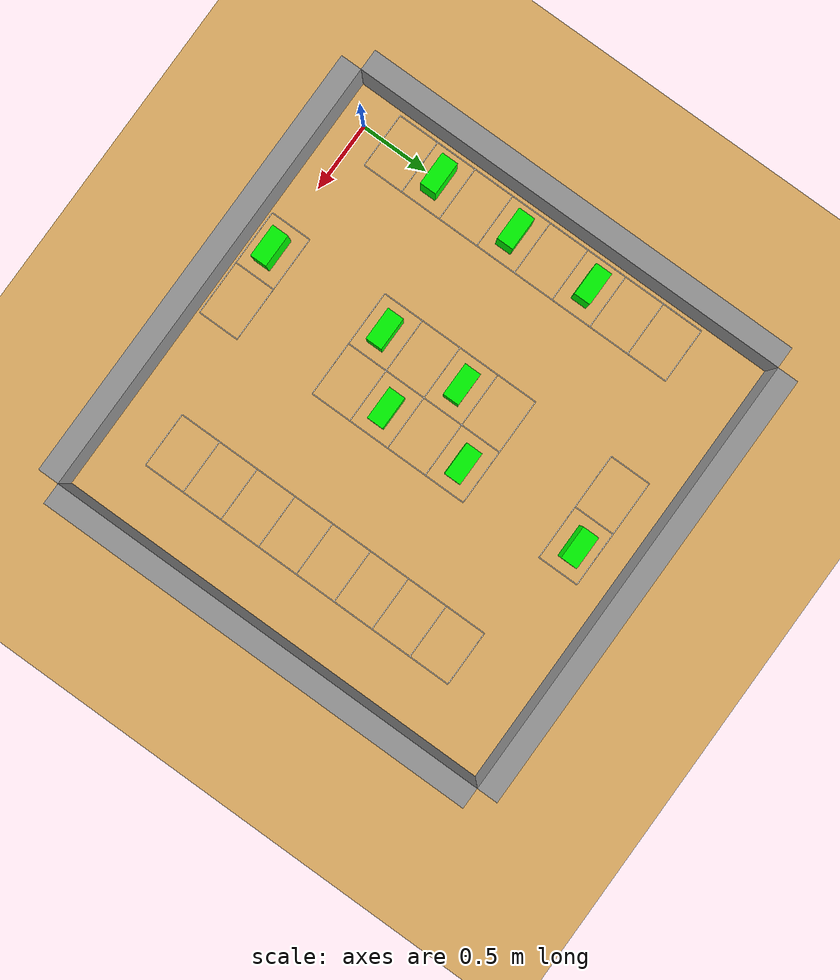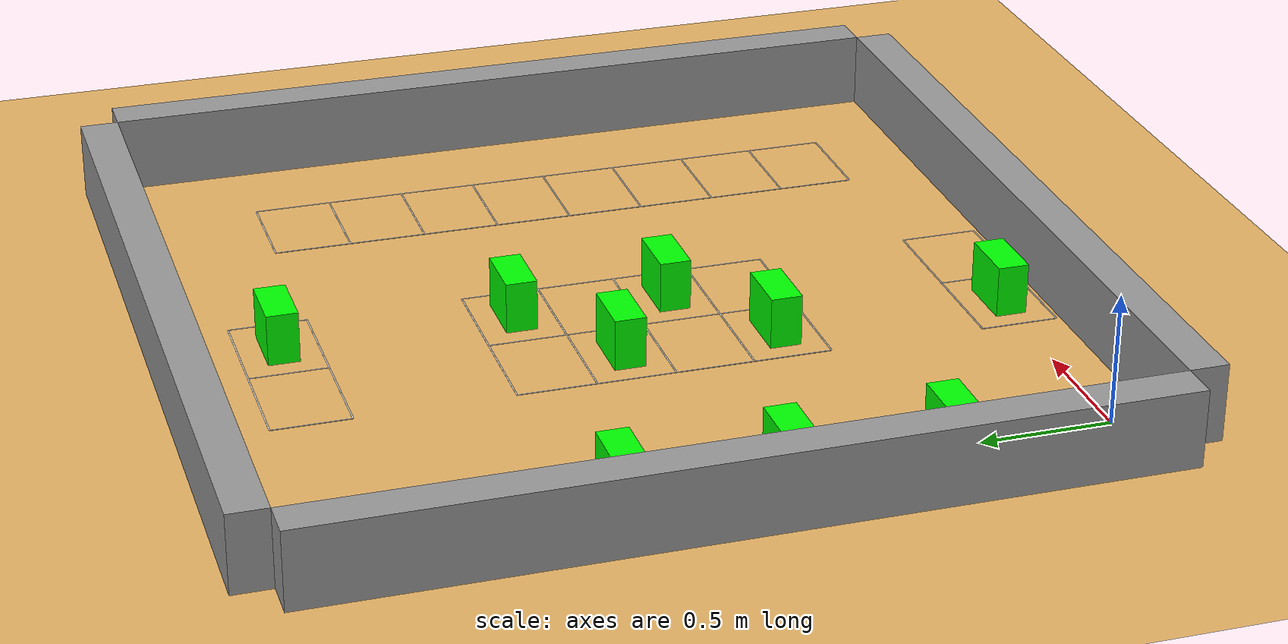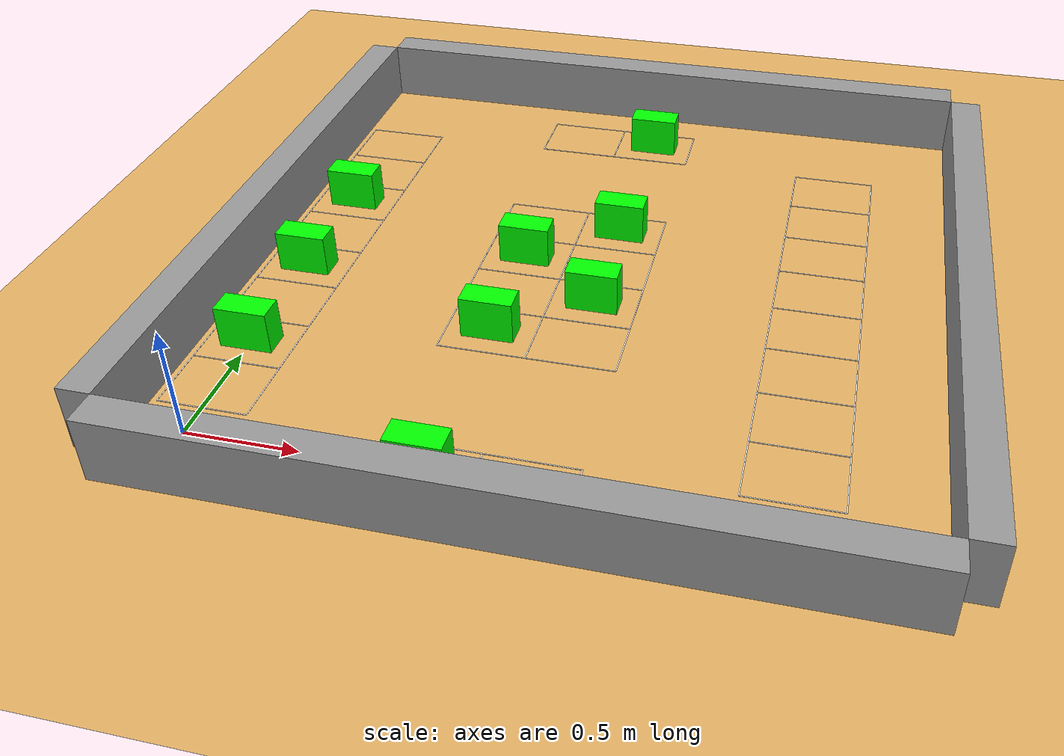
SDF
<sdf version="1.7">
 <world name="parking_lot">
  <light name="sun" type="directional">
   <pose>0 0 10 0 -0 0</pose>
   <diffuse>0.8 0.8 0.8 1</diffuse>
   <specular>0.2 0.2 0.2 1</specular>
   <attenuation>
    <range>1000</range>
    <constant>0.9</constant>
    <linear>0.01</linear>
    <quadratic>0.001</quadratic>
   </attenuation>
   <direction>-0.5 0.1 -0.9</direction>
   <spot><inner_angle>0</inner_angle><outer_angle>0</outer_angle><falloff>0</falloff></spot>
  </light>
  <model name="wood_ground_plane">
   <static>1</static>
   <link name="ground_link">
    <visual name="ground_visual">
     <geometry><plane><normal>0 0 1</normal><size>20 20</size></plane></geometry>
     <material><ambient>0.9 0.7 0.4 1</ambient><diffuse>0.9 0.7 0.4 1</diffuse></material>
    </visual>
    <collision name="collision">
     <geometry><plane><normal>0 0 1</normal><size>20 20</size></plane></geometry>
    </collision>
   </link>
  </model>
  <model name="parking_wall_3.5m">
   <pose>1.37274 2.16523 0 0 -0 0</pose>
   <link name="Wall_2">
    <collision name="Wall_2_Collision">
     <geometry><box><size>3.2 0.15 0.3</size></box></geometry>
     <pose>0 0 0.15 0 -0 0</pose>
    </collision>
    <visual name="Wall_2_Visual">
     <pose>0 0 0.15 0 -0 0</pose>
     <geometry><box><size>3.2 0.15 0.3</size></box></geometry>
     <material>
      <script><uri>file://media/materials/scripts/gazebo.material</uri><name>Gazebo/Grey</name></script>
      <ambient>1 1 1 1</ambient>
     </material>
     <meta><layer>0</layer></meta>
    </visual>
    <pose>0 0.942857 0 0 -0 3.14159</pose>
   </link>
   <link name="Wall_3">
    <collision name="Wall_3_Collision">
     <geometry><box><size>3.2 0.15 0.3</size></box></geometry>
     <pose>0 0 0.15 0 -0 0</pose>
    </collision>
    <visual name="Wall_3_Visual">
     <pose>0 0 0.15 0 -0 0</pose>
     <geometry><box><size>3.2 0.15 0.3</size></box></geometry>
     <material>
      <script><uri>file://media/materials/scripts/gazebo.material</uri><name>Gazebo/Grey</name></script>
      <ambient>1 1 1 1</ambient>
     </material>
     <meta><layer>0</layer></meta>
    </visual>
    <pose>-1.675 -0.732143 0 0 -0 -1.5708</pose>
   </link>
   <link name="Wall_4">
    <collision name="Wall_4_Collision">
     <geometry><box><size>3.2 0.15 0.3</size></box></geometry>
     <pose>0 0 0.15 0 -0 0</pose>
    </collision>
    <visual name="Wall_4_Visual">
     <pose>0 0 0.15 0 -0 0</pose>
     <geometry><box><size>3.2 0.15 0.3</size></box></geometry>
     <material>
      <script><uri>file://media/materials/scripts/gazebo.material</uri><name>Gazebo/Grey</name></script>
      <ambient>1 1 1 1</ambient>
     </material>
     <meta><layer>0</layer></meta>
    </visual>
    <pose>0 -2.40714 0 0 -0 0</pose>
   </link>
   <link name="Wall_5">
    <collision name="Wall_5_Collision">
     <geometry><box><size>3.2 0.15 0.3</size></box></geometry>
     <pose>0 0 0.15 0 -0 0</pose>
    </collision>
    <visual name="Wall_5_Visual">
     <pose>0 0 0.15 0 -0 0</pose>
     <geometry><box><size>3.2 0.15 0.3</size></box></geometry>
     <material>
      <script><uri>file://media/materials/scripts/gazebo.material</uri><name>Gazebo/Grey</name></script>
      <ambient>1 1 1 1</ambient>
     </material>
     <meta><layer>0</layer></meta>
    </visual>
    <pose>1.675 -0.732143 0 0 -0 1.5708</pose>
   </link>
   <static>1</static>
  </model>
  <model name="parking_spot_1">
   <static>1</static>
   <pose>0 0.3 0 0 -0 0</pose>
   <link name="spot_link">
    <visual name="base_plate">
     <geometry><box><size>0.4 0.3 0.001</size></box></geometry>
     <material><ambient>0.9 0.7 0.4 1</ambient><diffuse>0.9 0.7 0.4 1</diffuse></material>
    </visual>
    <visual name="top_border">
     <pose>0 0.15 0.002 0 -0 0</pose>
     <geometry><box><size>0.4 0.005 0.001</size></box></geometry>
     <material><ambient>1 1 1 1</ambient><diffuse>1 1 1 1</diffuse></material>
    </visual>
    <visual name="bottom_border">
     <pose>0 -0.15 0.002 0 -0 0</pose>
     <geometry><box><size>0.4 0.005 0.001</size></box></geometry>
     <material><ambient>1 1 1 1</ambient><diffuse>1 1 1 1</diffuse></material>
    </visual>
    <visual name="left_border">
     <pose>-0.2 0 0.002 0 -0 0</pose>
     <geometry><box><size>0.005 0.3 0.001</size></box></geometry>
     <material><ambient>1 1 1 1</ambient><diffuse>1 1 1 1</diffuse></material>
    </visual>
    <visual name="right_border">
     <pose>0.2 0 0.002 0 -0 0</pose>
     <geometry><box><size>0.005 0.3 0.001</size></box></geometry>
     <material><ambient>1 1 1 1</ambient><diffuse>1 1 1 1</diffuse></material>
    </visual>
   </link>
  </model>
  <model name="parking_spot_2">
   <static>1</static>
   <pose>0 0.6 0 0 -0 0</pose>
   <link name="spot_link">
    <visual name="base_plate">
     <geometry><box><size>0.4 0.3 0.001</size></box></geometry>
     <material><ambient>0.9 0.7 0.4 1</ambient><diffuse>0.9 0.7 0.4 1</diffuse></material>
    </visual>
    <visual name="top_border">
     <pose>0 0.15 0.002 0 -0 0</pose>
     <geometry><box><size>0.4 0.005 0.001</size></box></geometry>
     <material><ambient>1 1 1 1</ambient><diffuse>1 1 1 1</diffuse></material>
    </visual>
    <visual name="bottom_border">
     <pose>0 -0.15 0.002 0 -0 0</pose>
     <geometry><box><size>0.4 0.005 0.001</size></box></geometry>
     <material><ambient>1 1 1 1</ambient><diffuse>1 1 1 1</diffuse></material>
    </visual>
    <visual name="left_border">
     <pose>-0.2 0 0.002 0 -0 0</pose>
     <geometry><box><size>0.005 0.3 0.001</size></box></geometry>
     <material><ambient>1 1 1 1</ambient><diffuse>1 1 1 1</diffuse></material>
    </visual>
    <visual name="right_border">
     <pose>0.2 0 0.002 0 -0 0</pose>
     <geometry><box><size>0.005 0.3 0.001</size></box></geometry>
     <material><ambient>1 1 1 1</ambient><diffuse>1 1 1 1</diffuse></material>
    </visual>
   </link>
  </model>
  <model name="parking_spot_3">
   <static>1</static>
   <pose>0 0.9 0 0 -0 0</pose>
   <link name="spot_link">
    <visual name="base_plate">
     <geometry><box><size>0.4 0.3 0.001</size></box></geometry>
     <material><ambient>0.9 0.7 0.4 1</ambient><diffuse>0.9 0.7 0.4 1</diffuse></material>
    </visual>
    <visual name="top_border">
     <pose>0 0.15 0.002 0 -0 0</pose>
     <geometry><box><size>0.4 0.005 0.001</size></box></geometry>
     <material><ambient>1 1 1 1</ambient><diffuse>1 1 1 1</diffuse></material>
    </visual>
    <visual name="bottom_border">
     <pose>0 -0.15 0.002 0 -0 0</pose>
     <geometry><box><size>0.4 0.005 0.001</size></box></geometry>
     <material><ambient>1 1 1 1</ambient><diffuse>1 1 1 1</diffuse></material>
    </visual>
    <visual name="left_border">
     <pose>-0.2 0 0.002 0 -0 0</pose>
     <geometry><box><size>0.005 0.3 0.001</size></box></geometry>
     <material><ambient>1 1 1 1</ambient><diffuse>1 1 1 1</diffuse></material>
    </visual>
    <visual name="right_border">
     <pose>0.2 0 0.002 0 -0 0</pose>
     <geometry><box><size>0.005 0.3 0.001</size></box></geometry>
     <material><ambient>1 1 1 1</ambient><diffuse>1 1 1 1</diffuse></material>
    </visual>
   </link>
  </model>
  <model name="parking_spot_4">
   <static>1</static>
   <pose>0 1.2 0 0 -0 0</pose>
   <link name="spot_link">
    <visual name="base_plate">
     <geometry><box><size>0.4 0.3 0.001</size></box></geometry>
     <material><ambient>0.9 0.7 0.4 1</ambient><diffuse>0.9 0.7 0.4 1</diffuse></material>
    </visual>
    <visual name="top_border">
     <pose>0 0.15 0.002 0 -0 0</pose>
     <geometry><box><size>0.4 0.005 0.001</size></box></geometry>
     <material><ambient>1 1 1 1</ambient><diffuse>1 1 1 1</diffuse></material>
    </visual>
    <visual name="bottom_border">
     <pose>0 -0.15 0.002 0 -0 0</pose>
     <geometry><box><size>0.4 0.005 0.001</size></box></geometry>
     <material><ambient>1 1 1 1</ambient><diffuse>1 1 1 1</diffuse></material>
    </visual>
    <visual name="left_border">
     <pose>-0.2 0 0.002 0 -0 0</pose>
     <geometry><box><size>0.005 0.3 0.001</size></box></geometry>
     <material><ambient>1 1 1 1</ambient><diffuse>1 1 1 1</diffuse></material>
    </visual>
    <visual name="right_border">
     <pose>0.2 0 0.002 0 -0 0</pose>
     <geometry><box><size>0.005 0.3 0.001</size></box></geometry>
     <material><ambient>1 1 1 1</ambient><diffuse>1 1 1 1</diffuse></material>
    </visual>
   </link>
  </model>
  <model name="parking_spot_5">
   <static>1</static>
   <pose>0 1.5 0 0 -0 0</pose>
   <link name="spot_link">
    <visual name="base_plate">
     <geometry><box><size>0.4 0.3 0.001</size></box></geometry>
     <material><ambient>0.9 0.7 0.4 1</ambient><diffuse>0.9 0.7 0.4 1</diffuse></material>
    </visual>
    <visual name="top_border">
     <pose>0 0.15 0.002 0 -0 0</pose>
     <geometry><box><size>0.4 0.005 0.001</size></box></geometry>
     <material><ambient>1 1 1 1</ambient><diffuse>1 1 1 1</diffuse></material>
    </visual>
    <visual name="bottom_border">
     <pose>0 -0.15 0.002 0 -0 0</pose>
     <geometry><box><size>0.4 0.005 0.001</size></box></geometry>
     <material><ambient>1 1 1 1</ambient><diffuse>1 1 1 1</diffuse></material>
    </visual>
    <visual name="left_border">
     <pose>-0.2 0 0.002 0 -0 0</pose>
     <geometry><box><size>0.005 0.3 0.001</size></box></geometry>
     <material><ambient>1 1 1 1</ambient><diffuse>1 1 1 1</diffuse></material>
    </visual>
    <visual name="right_border">
     <pose>0.2 0 0.002 0 -0 0</pose>
     <geometry><box><size>0.005 0.3 0.001</size></box></geometry>
     <material><ambient>1 1 1 1</ambient><diffuse>1 1 1 1</diffuse></material>
    </visual>
   </link>
  </model>
  <model name="parking_spot_6">
   <static>1</static>
   <pose>0 1.8 0 0 -0 0</pose>
   <link name="spot_link">
    <visual name="base_plate">
     <geometry><box><size>0.4 0.3 0.001</size></box></geometry>
     <material><ambient>0.9 0.7 0.4 1</ambient><diffuse>0.9 0.7 0.4 1</diffuse></material>
    </visual>
    <visual name="top_border">
     <pose>0 0.15 0.002 0 -0 0</pose>
     <geometry><box><size>0.4 0.005 0.001</size></box></geometry>
     <material><ambient>1 1 1 1</ambient><diffuse>1 1 1 1</diffuse></material>
    </visual>
    <visual name="bottom_border">
     <pose>0 -0.15 0.002 0 -0 0</pose>
     <geometry><box><size>0.4 0.005 0.001</size></box></geometry>
     <material><ambient>1 1 1 1</ambient><diffuse>1 1 1 1</diffuse></material>
    </visual>
    <visual name="left_border">
     <pose>-0.2 0 0.002 0 -0 0</pose>
     <geometry><box><size>0.005 0.3 0.001</size></box></geometry>
     <material><ambient>1 1 1 1</ambient><diffuse>1 1 1 1</diffuse></material>
    </visual>
    <visual name="right_border">
     <pose>0.2 0 0.002 0 -0 0</pose>
     <geometry><box><size>0.005 0.3 0.001</size></box></geometry>
     <material><ambient>1 1 1 1</ambient><diffuse>1 1 1 1</diffuse></material>
    </visual>
   </link>
  </model>
  <model name="parking_spot_7">
   <static>1</static>
   <pose>0 2.1 0 0 -0 0</pose>
   <link name="spot_link">
    <visual name="base_plate">
     <geometry><box><size>0.4 0.3 0.001</size></box></geometry>
     <material><ambient>0.9 0.7 0.4 1</ambient><diffuse>0.9 0.7 0.4 1</diffuse></material>
    </visual>
    <visual name="top_border">
     <pose>0 0.15 0.002 0 -0 0</pose>
     <geometry><box><size>0.4 0.005 0.001</size></box></geometry>
     <material><ambient>1 1 1 1</ambient><diffuse>1 1 1 1</diffuse></material>
    </visual>
    <visual name="bottom_border">
     <pose>0 -0.15 0.002 0 -0 0</pose>
     <geometry><box><size>0.4 0.005 0.001</size></box></geometry>
     <material><ambient>1 1 1 1</ambient><diffuse>1 1 1 1</diffuse></material>
    </visual>
    <visual name="left_border">
     <pose>-0.2 0 0.002 0 -0 0</pose>
     <geometry><box><size>0.005 0.3 0.001</size></box></geometry>
     <material><ambient>1 1 1 1</ambient><diffuse>1 1 1 1</diffuse></material>
    </visual>
    <visual name="right_border">
     <pose>0.2 0 0.002 0 -0 0</pose>
     <geometry><box><size>0.005 0.3 0.001</size></box></geometry>
     <material><ambient>1 1 1 1</ambient><diffuse>1 1 1 1</diffuse></material>
    </visual>
   </link>
  </model>
  <model name="parking_spot_8">
   <static>1</static>
   <pose>0 2.4 0 0 -0 0</pose>
   <link name="spot_link">
    <visual name="base_plate">
     <geometry><box><size>0.4 0.3 0.001</size></box></geometry>
     <material><ambient>0.9 0.7 0.4 1</ambient><diffuse>0.9 0.7 0.4 1</diffuse></material>
    </visual>
    <visual name="top_border">
     <pose>0 0.15 0.002 0 -0 0</pose>
     <geometry><box><size>0.4 0.005 0.001</size></box></geometry>
     <material><ambient>1 1 1 1</ambient><diffuse>1 1 1 1</diffuse></material>
    </visual>
    <visual name="bottom_border">
     <pose>0 -0.15 0.002 0 -0 0</pose>
     <geometry><box><size>0.4 0.005 0.001</size></box></geometry>
     <material><ambient>1 1 1 1</ambient><diffuse>1 1 1 1</diffuse></material>
    </visual>
    <visual name="left_border">
     <pose>-0.2 0 0.002 0 -0 0</pose>
     <geometry><box><size>0.005 0.3 0.001</size></box></geometry>
     <material><ambient>1 1 1 1</ambient><diffuse>1 1 1 1</diffuse></material>
    </visual>
    <visual name="right_border">
     <pose>0.2 0 0.002 0 -0 0</pose>
     <geometry><box><size>0.005 0.3 0.001</size></box></geometry>
     <material><ambient>1 1 1 1</ambient><diffuse>1 1 1 1</diffuse></material>
    </visual>
   </link>
  </model>
  <model name="parking_spot_9">
   <static>1</static>
   <pose>1 0 0 0 -0 0</pose>
   <link name="spot_link">
    <visual name="base_plate">
     <geometry><box><size>0.4 0.3 0.001</size></box></geometry>
     <material><ambient>0.9 0.7 0.4 1</ambient><diffuse>0.9 0.7 0.4 1</diffuse></material>
    </visual>
    <visual name="top_border">
     <pose>0 0.15 0.002 0 -0 0</pose>
     <geometry><box><size>0.4 0.005 0.001</size></box></geometry>
     <material><ambient>1 1 1 1</ambient><diffuse>1 1 1 1</diffuse></material>
    </visual>
    <visual name="bottom_border">
     <pose>0 -0.15 0.002 0 -0 0</pose>
     <geometry><box><size>0.4 0.005 0.001</size></box></geometry>
     <material><ambient>1 1 1 1</ambient><diffuse>1 1 1 1</diffuse></material>
    </visual>
    <visual name="left_border">
     <pose>-0.2 0 0.002 0 -0 0</pose>
     <geometry><box><size>0.005 0.3 0.001</size></box></geometry>
     <material><ambient>1 1 1 1</ambient><diffuse>1 1 1 1</diffuse></material>
    </visual>
    <visual name="right_border">
     <pose>0.2 0 0.002 0 -0 0</pose>
     <geometry><box><size>0.005 0.3 0.001</size></box></geometry>
     <material><ambient>1 1 1 1</ambient><diffuse>1 1 1 1</diffuse></material>
    </visual>
   </link>
  </model>
  <model name="parking_spot_10">
   <static>1</static>
   <pose>1.4 0 0 0 -0 0</pose>
   <link name="spot_link">
    <visual name="base_plate">
     <geometry><box><size>0.4 0.3 0.001</size></box></geometry>
     <material><ambient>0.9 0.7 0.4 1</ambient><diffuse>0.9 0.7 0.4 1</diffuse></material>
    </visual>
    <visual name="top_border">
     <pose>0 0.15 0.002 0 -0 0</pose>
     <geometry><box><size>0.4 0.005 0.001</size></box></geometry>
     <material><ambient>1 1 1 1</ambient><diffuse>1 1 1 1</diffuse></material>
    </visual>
    <visual name="bottom_border">
     <pose>0 -0.15 0.002 0 -0 0</pose>
     <geometry><box><size>0.4 0.005 0.001</size></box></geometry>
     <material><ambient>1 1 1 1</ambient><diffuse>1 1 1 1</diffuse></material>
    </visual>
    <visual name="left_border">
     <pose>-0.2 0 0.002 0 -0 0</pose>
     <geometry><box><size>0.005 0.3 0.001</size></box></geometry>
     <material><ambient>1 1 1 1</ambient><diffuse>1 1 1 1</diffuse></material>
    </visual>
    <visual name="right_border">
     <pose>0.2 0 0.002 0 -0 0</pose>
     <geometry><box><size>0.005 0.3 0.001</size></box></geometry>
     <material><ambient>1 1 1 1</ambient><diffuse>1 1 1 1</diffuse></material>
    </visual>
   </link>
  </model>
  <model name="parking_spot_11">
   <static>1</static>
   <pose>1 1.8 0 0 -0 0</pose>
   <link name="spot_link">
    <visual name="base_plate">
     <geometry><box><size>0.4 0.3 0.001</size></box></geometry>
     <material><ambient>0.9 0.7 0.4 1</ambient><diffuse>0.9 0.7 0.4 1</diffuse></material>
    </visual>
    <visual name="top_border">
     <pose>0 0.15 0.002 0 -0 0</pose>
     <geometry><box><size>0.4 0.005 0.001</size></box></geometry>
     <material><ambient>1 1 1 1</ambient><diffuse>1 1 1 1</diffuse></material>
    </visual>
    <visual name="bottom_border">
     <pose>0 -0.15 0.002 0 -0 0</pose>
     <geometry><box><size>0.4 0.005 0.001</size></box></geometry>
     <material><ambient>1 1 1 1</ambient><diffuse>1 1 1 1</diffuse></material>
    </visual>
    <visual name="left_border">
     <pose>-0.2 0 0.002 0 -0 0</pose>
     <geometry><box><size>0.005 0.3 0.001</size></box></geometry>
     <material><ambient>1 1 1 1</ambient><diffuse>1 1 1 1</diffuse></material>
    </visual>
    <visual name="right_border">
     <pose>0.2 0 0.002 0 -0 0</pose>
     <geometry><box><size>0.005 0.3 0.001</size></box></geometry>
     <material><ambient>1 1 1 1</ambient><diffuse>1 1 1 1</diffuse></material>
    </visual>
   </link>
  </model>
  <model name="parking_spot_12">
   <static>1</static>
   <pose>1 1.5 0 0 -0 0</pose>
   <link name="spot_link">
    <visual name="base_plate">
     <geometry><box><size>0.4 0.3 0.001</size></box></geometry>
     <material><ambient>0.9 0.7 0.4 1</ambient><diffuse>0.9 0.7 0.4 1</diffuse></material>
    </visual>
    <visual name="top_border">
     <pose>0 0.15 0.002 0 -0 0</pose>
     <geometry><box><size>0.4 0.005 0.001</size></box></geometry>
     <material><ambient>1 1 1 1</ambient><diffuse>1 1 1 1</diffuse></material>
    </visual>
    <visual name="bottom_border">
     <pose>0 -0.15 0.002 0 -0 0</pose>
     <geometry><box><size>0.4 0.005 0.001</size></box></geometry>
     <material><ambient>1 1 1 1</ambient><diffuse>1 1 1 1</diffuse></material>
    </visual>
    <visual name="left_border">
     <pose>-0.2 0 0.002 0 -0 0</pose>
     <geometry><box><size>0.005 0.3 0.001</size></box></geometry>
     <material><ambient>1 1 1 1</ambient><diffuse>1 1 1 1</diffuse></material>
    </visual>
    <visual name="right_border">
     <pose>0.2 0 0.002 0 -0 0</pose>
     <geometry><box><size>0.005 0.3 0.001</size></box></geometry>
     <material><ambient>1 1 1 1</ambient><diffuse>1 1 1 1</diffuse></material>
    </visual>
   </link>
  </model>
  <model name="parking_spot_13">
   <static>1</static>
   <pose>1 1.2 0 0 -0 0</pose>
   <link name="spot_link">
    <visual name="base_plate">
     <geometry><box><size>0.4 0.3 0.001</size></box></geometry>
     <material><ambient>0.9 0.7 0.4 1</ambient><diffuse>0.9 0.7 0.4 1</diffuse></material>
    </visual>
    <visual name="top_border">
     <pose>0 0.15 0.002 0 -0 0</pose>
     <geometry><box><size>0.4 0.005 0.001</size></box></geometry>
     <material><ambient>1 1 1 1</ambient><diffuse>1 1 1 1</diffuse></material>
    </visual>
    <visual name="bottom_border">
     <pose>0 -0.15 0.002 0 -0 0</pose>
     <geometry><box><size>0.4 0.005 0.001</size></box></geometry>
     <material><ambient>1 1 1 1</ambient><diffuse>1 1 1 1</diffuse></material>
    </visual>
    <visual name="left_border">
     <pose>-0.2 0 0.002 0 -0 0</pose>
     <geometry><box><size>0.005 0.3 0.001</size></box></geometry>
     <material><ambient>1 1 1 1</ambient><diffuse>1 1 1 1</diffuse></material>
    </visual>
    <visual name="right_border">
     <pose>0.2 0 0.002 0 -0 0</pose>
     <geometry><box><size>0.005 0.3 0.001</size></box></geometry>
     <material><ambient>1 1 1 1</ambient><diffuse>1 1 1 1</diffuse></material>
    </visual>
   </link>
  </model>
  <model name="parking_spot_14">
   <static>1</static>
   <pose>1 0.9 0 0 -0 0</pose>
   <link name="spot_link">
    <visual name="base_plate">
     <geometry><box><size>0.4 0.3 0.001</size></box></geometry>
     <material><ambient>0.9 0.7 0.4 1</ambient><diffuse>0.9 0.7 0.4 1</diffuse></material>
    </visual>
    <visual name="top_border">
     <pose>0 0.15 0.002 0 -0 0</pose>
     <geometry><box><size>0.4 0.005 0.001</size></box></geometry>
     <material><ambient>1 1 1 1</ambient><diffuse>1 1 1 1</diffuse></material>
    </visual>
    <visual name="bottom_border">
     <pose>0 -0.15 0.002 0 -0 0</pose>
     <geometry><box><size>0.4 0.005 0.001</size></box></geometry>
     <material><ambient>1 1 1 1</ambient><diffuse>1 1 1 1</diffuse></material>
    </visual>
    <visual name="left_border">
     <pose>-0.2 0 0.002 0 -0 0</pose>
     <geometry><box><size>0.005 0.3 0.001</size></box></geometry>
     <material><ambient>1 1 1 1</ambient><diffuse>1 1 1 1</diffuse></material>
    </visual>
    <visual name="right_border">
     <pose>0.2 0 0.002 0 -0 0</pose>
     <geometry><box><size>0.005 0.3 0.001</size></box></geometry>
     <material><ambient>1 1 1 1</ambient><diffuse>1 1 1 1</diffuse></material>
    </visual>
   </link>
  </model>
  <model name="parking_spot_15">
   <static>1</static>
   <pose>1.4 1.8 0 0 -0 0</pose>
   <link name="spot_link">
    <visual name="base_plate">
     <geometry><box><size>0.4 0.3 0.001</size></box></geometry>
     <material><ambient>0.9 0.7 0.4 1</ambient><diffuse>0.9 0.7 0.4 1</diffuse></material>
    </visual>
    <visual name="top_border">
     <pose>0 0.15 0.002 0 -0 0</pose>
     <geometry><box><size>0.4 0.005 0.001</size></box></geometry>
     <material><ambient>1 1 1 1</ambient><diffuse>1 1 1 1</diffuse></material>
    </visual>
    <visual name="bottom_border">
     <pose>0 -0.15 0.002 0 -0 0</pose>
     <geometry><box><size>0.4 0.005 0.001</size></box></geometry>
     <material><ambient>1 1 1 1</ambient><diffuse>1 1 1 1</diffuse></material>
    </visual>
    <visual name="left_border">
     <pose>-0.2 0 0.002 0 -0 0</pose>
     <geometry><box><size>0.005 0.3 0.001</size></box></geometry>
     <material><ambient>1 1 1 1</ambient><diffuse>1 1 1 1</diffuse></material>
    </visual>
    <visual name="right_border">
     <pose>0.2 0 0.002 0 -0 0</pose>
     <geometry><box><size>0.005 0.3 0.001</size></box></geometry>
     <material><ambient>1 1 1 1</ambient><diffuse>1 1 1 1</diffuse></material>
    </visual>
   </link>
  </model>
  <model name="parking_spot_16">
   <static>1</static>
   <pose>1.4 1.5 0 0 -0 0</pose>
   <link name="spot_link">
    <visual name="base_plate">
     <geometry><box><size>0.4 0.3 0.001</size></box></geometry>
     <material><ambient>0.9 0.7 0.4 1</ambient><diffuse>0.9 0.7 0.4 1</diffuse></material>
    </visual>
    <visual name="top_border">
     <pose>0 0.15 0.002 0 -0 0</pose>
     <geometry><box><size>0.4 0.005 0.001</size></box></geometry>
     <material><ambient>1 1 1 1</ambient><diffuse>1 1 1 1</diffuse></material>
    </visual>
    <visual name="bottom_border">
     <pose>0 -0.15 0.002 0 -0 0</pose>
     <geometry><box><size>0.4 0.005 0.001</size></box></geometry>
     <material><ambient>1 1 1 1</ambient><diffuse>1 1 1 1</diffuse></material>
    </visual>
    <visual name="left_border">
     <pose>-0.2 0 0.002 0 -0 0</pose>
     <geometry><box><size>0.005 0.3 0.001</size></box></geometry>
     <material><ambient>1 1 1 1</ambient><diffuse>1 1 1 1</diffuse></material>
    </visual>
    <visual name="right_border">
     <pose>0.2 0 0.002 0 -0 0</pose>
     <geometry><box><size>0.005 0.3 0.001</size></box></geometry>
     <material><ambient>1 1 1 1</ambient><diffuse>1 1 1 1</diffuse></material>
    </visual>
   </link>
  </model>
  <model name="parking_spot_17">
   <static>1</static>
   <pose>1.4 1.2 0 0 -0 0</pose>
   <link name="spot_link">
    <visual name="base_plate">
     <geometry><box><size>0.4 0.3 0.001</size></box></geometry>
     <material><ambient>0.9 0.7 0.4 1</ambient><diffuse>0.9 0.7 0.4 1</diffuse></material>
    </visual>
    <visual name="top_border">
     <pose>0 0.15 0.002 0 -0 0</pose>
     <geometry><box><size>0.4 0.005 0.001</size></box></geometry>
     <material><ambient>1 1 1 1</ambient><diffuse>1 1 1 1</diffuse></material>
    </visual>
    <visual name="bottom_border">
     <pose>0 -0.15 0.002 0 -0 0</pose>
     <geometry><box><size>0.4 0.005 0.001</size></box></geometry>
     <material><ambient>1 1 1 1</ambient><diffuse>1 1 1 1</diffuse></material>
    </visual>
    <visual name="left_border">
     <pose>-0.2 0 0.002 0 -0 0</pose>
     <geometry><box><size>0.005 0.3 0.001</size></box></geometry>
     <material><ambient>1 1 1 1</ambient><diffuse>1 1 1 1</diffuse></material>
    </visual>
    <visual name="right_border">
     <pose>0.2 0 0.002 0 -0 0</pose>
     <geometry><box><size>0.005 0.3 0.001</size></box></geometry>
     <material><ambient>1 1 1 1</ambient><diffuse>1 1 1 1</diffuse></material>
    </visual>
   </link>
  </model>
  <model name="parking_spot_18">
   <static>1</static>
   <pose>1.4 0.9 0 0 -0 0</pose>
   <link name="spot_link">
    <visual name="base_plate">
     <geometry><box><size>0.4 0.3 0.001</size></box></geometry>
     <material><ambient>0.9 0.7 0.4 1</ambient><diffuse>0.9 0.7 0.4 1</diffuse></material>
    </visual>
    <visual name="top_border">
     <pose>0 0.15 0.002 0 -0 0</pose>
     <geometry><box><size>0.4 0.005 0.001</size></box></geometry>
     <material><ambient>1 1 1 1</ambient><diffuse>1 1 1 1</diffuse></material>
    </visual>
    <visual name="bottom_border">
     <pose>0 -0.15 0.002 0 -0 0</pose>
     <geometry><box><size>0.4 0.005 0.001</size></box></geometry>
     <material><ambient>1 1 1 1</ambient><diffuse>1 1 1 1</diffuse></material>
    </visual>
    <visual name="left_border">
     <pose>-0.2 0 0.002 0 -0 0</pose>
     <geometry><box><size>0.005 0.3 0.001</size></box></geometry>
     <material><ambient>1 1 1 1</ambient><diffuse>1 1 1 1</diffuse></material>
    </visual>
    <visual name="right_border">
     <pose>0.2 0 0.002 0 -0 0</pose>
     <geometry><box><size>0.005 0.3 0.001</size></box></geometry>
     <material><ambient>1 1 1 1</ambient><diffuse>1 1 1 1</diffuse></material>
    </visual>
   </link>
  </model>
  <model name="parking_spot_19">
   <static>1</static>
   <pose>1 2.7 0 0 -0 0</pose>
   <link name="spot_link">
    <visual name="base_plate">
     <geometry><box><size>0.4 0.3 0.001</size></box></geometry>
     <material><ambient>0.9 0.7 0.4 1</ambient><diffuse>0.9 0.7 0.4 1</diffuse></material>
    </visual>
    <visual name="top_border">
     <pose>0 0.15 0.002 0 -0 0</pose>
     <geometry><box><size>0.4 0.005 0.001</size></box></geometry>
     <material><ambient>1 1 1 1</ambient><diffuse>1 1 1 1</diffuse></material>
    </visual>
    <visual name="bottom_border">
     <pose>0 -0.15 0.002 0 -0 0</pose>
     <geometry><box><size>0.4 0.005 0.001</size></box></geometry>
     <material><ambient>1 1 1 1</ambient><diffuse>1 1 1 1</diffuse></material>
    </visual>
    <visual name="left_border">
     <pose>-0.2 0 0.002 0 -0 0</pose>
     <geometry><box><size>0.005 0.3 0.001</size></box></geometry>
     <material><ambient>1 1 1 1</ambient><diffuse>1 1 1 1</diffuse></material>
    </visual>
    <visual name="right_border">
     <pose>0.2 0 0.002 0 -0 0</pose>
     <geometry><box><size>0.005 0.3 0.001</size></box></geometry>
     <material><ambient>1 1 1 1</ambient><diffuse>1 1 1 1</diffuse></material>
    </visual>
   </link>
  </model>
  <model name="parking_spot_20">
   <static>1</static>
   <pose>1.4 2.7 0 0 -0 0</pose>
   <link name="spot_link">
    <visual name="base_plate">
     <geometry><box><size>0.4 0.3 0.001</size></box></geometry>
     <material><ambient>0.9 0.7 0.4 1</ambient><diffuse>0.9 0.7 0.4 1</diffuse></material>
    </visual>
    <visual name="top_border">
     <pose>0 0.15 0.002 0 -0 0</pose>
     <geometry><box><size>0.4 0.005 0.001</size></box></geometry>
     <material><ambient>1 1 1 1</ambient><diffuse>1 1 1 1</diffuse></material>
    </visual>
    <visual name="bottom_border">
     <pose>0 -0.15 0.002 0 -0 0</pose>
     <geometry><box><size>0.4 0.005 0.001</size></box></geometry>
     <material><ambient>1 1 1 1</ambient><diffuse>1 1 1 1</diffuse></material>
    </visual>
    <visual name="left_border">
     <pose>-0.2 0 0.002 0 -0 0</pose>
     <geometry><box><size>0.005 0.3 0.001</size></box></geometry>
     <material><ambient>1 1 1 1</ambient><diffuse>1 1 1 1</diffuse></material>
    </visual>
    <visual name="right_border">
     <pose>0.2 0 0.002 0 -0 0</pose>
     <geometry><box><size>0.005 0.3 0.001</size></box></geometry>
     <material><ambient>1 1 1 1</ambient><diffuse>1 1 1 1</diffuse></material>
    </visual>
   </link>
  </model>
  <model name="parking_spot_21">
   <static>1</static>
   <pose>2.4 2.4 0 0 -0 0</pose>
   <link name="spot_link">
    <visual name="base_plate">
     <geometry><box><size>0.4 0.3 0.001</size></box></geometry>
     <material><ambient>0.9 0.7 0.4 1</ambient><diffuse>0.9 0.7 0.4 1</diffuse></material>
    </visual>
    <visual name="top_border">
     <pose>0 0.15 0.002 0 -0 0</pose>
     <geometry><box><size>0.4 0.005 0.001</size></box></geometry>
     <material><ambient>1 1 1 1</ambient><diffuse>1 1 1 1</diffuse></material>
    </visual>
    <visual name="bottom_border">
     <pose>0 -0.15 0.002 0 -0 0</pose>
     <geometry><box><size>0.4 0.005 0.001</size></box></geometry>
     <material><ambient>1 1 1 1</ambient><diffuse>1 1 1 1</diffuse></material>
    </visual>
    <visual name="left_border">
     <pose>-0.2 0 0.002 0 -0 0</pose>
     <geometry><box><size>0.005 0.3 0.001</size></box></geometry>
     <material><ambient>1 1 1 1</ambient><diffuse>1 1 1 1</diffuse></material>
    </visual>
    <visual name="right_border">
     <pose>0.2 0 0.002 0 -0 0</pose>
     <geometry><box><size>0.005 0.3 0.001</size></box></geometry>
     <material><ambient>1 1 1 1</ambient><diffuse>1 1 1 1</diffuse></material>
    </visual>
   </link>
  </model>
  <model name="parking_spot_22">
   <static>1</static>
   <pose>2.4 2.1 0 0 -0 0</pose>
   <link name="spot_link">
    <visual name="base_plate">
     <geometry><box><size>0.4 0.3 0.001</size></box></geometry>
     <material><ambient>0.9 0.7 0.4 1</ambient><diffuse>0.9 0.7 0.4 1</diffuse></material>
    </visual>
    <visual name="top_border">
     <pose>0 0.15 0.002 0 -0 0</pose>
     <geometry><box><size>0.4 0.005 0.001</size></box></geometry>
     <material><ambient>1 1 1 1</ambient><diffuse>1 1 1 1</diffuse></material>
    </visual>
    <visual name="bottom_border">
     <pose>0 -0.15 0.002 0 -0 0</pose>
     <geometry><box><size>0.4 0.005 0.001</size></box></geometry>
     <material><ambient>1 1 1 1</ambient><diffuse>1 1 1 1</diffuse></material>
    </visual>
    <visual name="left_border">
     <pose>-0.2 0 0.002 0 -0 0</pose>
     <geometry><box><size>0.005 0.3 0.001</size></box></geometry>
     <material><ambient>1 1 1 1</ambient><diffuse>1 1 1 1</diffuse></material>
    </visual>
    <visual name="right_border">
     <pose>0.2 0 0.002 0 -0 0</pose>
     <geometry><box><size>0.005 0.3 0.001</size></box></geometry>
     <material><ambient>1 1 1 1</ambient><diffuse>1 1 1 1</diffuse></material>
    </visual>
   </link>
  </model>
  <model name="parking_spot_23">
   <static>1</static>
   <pose>2.4 1.8 0 0 -0 0</pose>
   <link name="spot_link">
    <visual name="base_plate">
     <geometry><box><size>0.4 0.3 0.001</size></box></geometry>
     <material><ambient>0.9 0.7 0.4 1</ambient><diffuse>0.9 0.7 0.4 1</diffuse></material>
    </visual>
    <visual name="top_border">
     <pose>0 0.15 0.002 0 -0 0</pose>
     <geometry><box><size>0.4 0.005 0.001</size></box></geometry>
     <material><ambient>1 1 1 1</ambient><diffuse>1 1 1 1</diffuse></material>
    </visual>
    <visual name="bottom_border">
     <pose>0 -0.15 0.002 0 -0 0</pose>
     <geometry><box><size>0.4 0.005 0.001</size></box></geometry>
     <material><ambient>1 1 1 1</ambient><diffuse>1 1 1 1</diffuse></material>
    </visual>
    <visual name="left_border">
     <pose>-0.2 0 0.002 0 -0 0</pose>
     <geometry><box><size>0.005 0.3 0.001</size></box></geometry>
     <material><ambient>1 1 1 1</ambient><diffuse>1 1 1 1</diffuse></material>
    </visual>
    <visual name="right_border">
     <pose>0.2 0 0.002 0 -0 0</pose>
     <geometry><box><size>0.005 0.3 0.001</size></box></geometry>
     <material><ambient>1 1 1 1</ambient><diffuse>1 1 1 1</diffuse></material>
    </visual>
   </link>
  </model>
  <model name="parking_spot_24">
   <static>1</static>
   <pose>2.4 1.5 0 0 -0 0</pose>
   <link name="spot_link">
    <visual name="base_plate">
     <geometry><box><size>0.4 0.3 0.001</size></box></geometry>
     <material><ambient>0.9 0.7 0.4 1</ambient><diffuse>0.9 0.7 0.4 1</diffuse></material>
    </visual>
    <visual name="top_border">
     <pose>0 0.15 0.002 0 -0 0</pose>
     <geometry><box><size>0.4 0.005 0.001</size></box></geometry>
     <material><ambient>1 1 1 1</ambient><diffuse>1 1 1 1</diffuse></material>
    </visual>
    <visual name="bottom_border">
     <pose>0 -0.15 0.002 0 -0 0</pose>
     <geometry><box><size>0.4 0.005 0.001</size></box></geometry>
     <material><ambient>1 1 1 1</ambient><diffuse>1 1 1 1</diffuse></material>
    </visual>
    <visual name="left_border">
     <pose>-0.2 0 0.002 0 -0 0</pose>
     <geometry><box><size>0.005 0.3 0.001</size></box></geometry>
     <material><ambient>1 1 1 1</ambient><diffuse>1 1 1 1</diffuse></material>
    </visual>
    <visual name="right_border">
     <pose>0.2 0 0.002 0 -0 0</pose>
     <geometry><box><size>0.005 0.3 0.001</size></box></geometry>
     <material><ambient>1 1 1 1</ambient><diffuse>1 1 1 1</diffuse></material>
    </visual>
   </link>
  </model>
  <model name="parking_spot_25">
   <static>1</static>
   <pose>2.4 1.2 0 0 -0 0</pose>
   <link name="spot_link">
    <visual name="base_plate">
     <geometry><box><size>0.4 0.3 0.001</size></box></geometry>
     <material><ambient>0.9 0.7 0.4 1</ambient><diffuse>0.9 0.7 0.4 1</diffuse></material>
    </visual>
    <visual name="top_border">
     <pose>0 0.15 0.002 0 -0 0</pose>
     <geometry><box><size>0.4 0.005 0.001</size></box></geometry>
     <material><ambient>1 1 1 1</ambient><diffuse>1 1 1 1</diffuse></material>
    </visual>
    <visual name="bottom_border">
     <pose>0 -0.15 0.002 0 -0 0</pose>
     <geometry><box><size>0.4 0.005 0.001</size></box></geometry>
     <material><ambient>1 1 1 1</ambient><diffuse>1 1 1 1</diffuse></material>
    </visual>
    <visual name="left_border">
     <pose>-0.2 0 0.002 0 -0 0</pose>
     <geometry><box><size>0.005 0.3 0.001</size></box></geometry>
     <material><ambient>1 1 1 1</ambient><diffuse>1 1 1 1</diffuse></material>
    </visual>
    <visual name="right_border">
     <pose>0.2 0 0.002 0 -0 0</pose>
     <geometry><box><size>0.005 0.3 0.001</size></box></geometry>
     <material><ambient>1 1 1 1</ambient><diffuse>1 1 1 1</diffuse></material>
    </visual>
   </link>
  </model>
  <model name="parking_spot_26">
   <static>1</static>
   <pose>2.4 0.9 0 0 -0 0</pose>
   <link name="spot_link">
    <visual name="base_plate">
     <geometry><box><size>0.4 0.3 0.001</size></box></geometry>
     <material><ambient>0.9 0.7 0.4 1</ambient><diffuse>0.9 0.7 0.4 1</diffuse></material>
    </visual>
    <visual name="top_border">
     <pose>0 0.15 0.002 0 -0 0</pose>
     <geometry><box><size>0.4 0.005 0.001</size></box></geometry>
     <material><ambient>1 1 1 1</ambient><diffuse>1 1 1 1</diffuse></material>
    </visual>
    <visual name="bottom_border">
     <pose>0 -0.15 0.002 0 -0 0</pose>
     <geometry><box><size>0.4 0.005 0.001</size></box></geometry>
     <material><ambient>1 1 1 1</ambient><diffuse>1 1 1 1</diffuse></material>
    </visual>
    <visual name="left_border">
     <pose>-0.2 0 0.002 0 -0 0</pose>
     <geometry><box><size>0.005 0.3 0.001</size></box></geometry>
     <material><ambient>1 1 1 1</ambient><diffuse>1 1 1 1</diffuse></material>
    </visual>
    <visual name="right_border">
     <pose>0.2 0 0.002 0 -0 0</pose>
     <geometry><box><size>0.005 0.3 0.001</size></box></geometry>
     <material><ambient>1 1 1 1</ambient><diffuse>1 1 1 1</diffuse></material>
    </visual>
   </link>
  </model>
  <model name="parking_spot_27">
   <static>1</static>
   <pose>2.4 0.6 0 0 -0 0</pose>
   <link name="spot_link">
    <visual name="base_plate">
     <geometry><box><size>0.4 0.3 0.001</size></box></geometry>
     <material><ambient>0.9 0.7 0.4 1</ambient><diffuse>0.9 0.7 0.4 1</diffuse></material>
    </visual>
    <visual name="top_border">
     <pose>0 0.15 0.002 0 -0 0</pose>
     <geometry><box><size>0.4 0.005 0.001</size></box></geometry>
     <material><ambient>1 1 1 1</ambient><diffuse>1 1 1 1</diffuse></material>
    </visual>
    <visual name="bottom_border">
     <pose>0 -0.15 0.002 0 -0 0</pose>
     <geometry><box><size>0.4 0.005 0.001</size></box></geometry>
     <material><ambient>1 1 1 1</ambient><diffuse>1 1 1 1</diffuse></material>
    </visual>
    <visual name="left_border">
     <pose>-0.2 0 0.002 0 -0 0</pose>
     <geometry><box><size>0.005 0.3 0.001</size></box></geometry>
     <material><ambient>1 1 1 1</ambient><diffuse>1 1 1 1</diffuse></material>
    </visual>
    <visual name="right_border">
     <pose>0.2 0 0.002 0 -0 0</pose>
     <geometry><box><size>0.005 0.3 0.001</size></box></geometry>
     <material><ambient>1 1 1 1</ambient><diffuse>1 1 1 1</diffuse></material>
    </visual>
   </link>
  </model>
  <model name="parking_spot_28">
   <static>1</static>
   <pose>2.4 0.3 0 0 -0 0</pose>
   <link name="spot_link">
    <visual name="base_plate">
     <geometry><box><size>0.4 0.3 0.001</size></box></geometry>
     <material><ambient>0.9 0.7 0.4 1</ambient><diffuse>0.9 0.7 0.4 1</diffuse></material>
    </visual>
    <visual name="top_border">
     <pose>0 0.15 0.002 0 -0 0</pose>
     <geometry><box><size>0.4 0.005 0.001</size></box></geometry>
     <material><ambient>1 1 1 1</ambient><diffuse>1 1 1 1</diffuse></material>
    </visual>
    <visual name="bottom_border">
     <pose>0 -0.15 0.002 0 -0 0</pose>
     <geometry><box><size>0.4 0.005 0.001</size></box></geometry>
     <material><ambient>1 1 1 1</ambient><diffuse>1 1 1 1</diffuse></material>
    </visual>
    <visual name="left_border">
     <pose>-0.2 0 0.002 0 -0 0</pose>
     <geometry><box><size>0.005 0.3 0.001</size></box></geometry>
     <material><ambient>1 1 1 1</ambient><diffuse>1 1 1 1</diffuse></material>
    </visual>
    <visual name="right_border">
     <pose>0.2 0 0.002 0 -0 0</pose>
     <geometry><box><size>0.005 0.3 0.001</size></box></geometry>
     <material><ambient>1 1 1 1</ambient><diffuse>1 1 1 1</diffuse></material>
    </visual>
   </link>
  </model>
  <model name="colored_box_1">
   <static>0</static>
   <pose>-0 0.6 0.1 0 -0 -3e-06</pose>
   <link name="box_link">
    <visual name="box_visual">
     <geometry><box><size>0.24 0.12 0.2</size></box></geometry>
     <material><ambient>0 1 0 1</ambient><diffuse>0 1 0 1</diffuse></material>
    </visual>
    <collision name="box_collision"><geometry><box><size>0.24 0.12 0.2</size></box></geometry></collision>
    <inertial>
     <inertia><ixx>1</ixx><ixy>0</ixy><ixz>0</ixz><iyy>1</iyy><iyz>0</iyz><izz>1</izz></inertia>
     <mass>1</mass>
    </inertial>
   </link>
  </model>
  <model name="colored_box_2">
   <static>0</static>
   <pose>0 1.2 0.1 0 -0 1e-06</pose>
   <link name="box_link">
    <visual name="box_visual">
     <geometry><box><size>0.24 0.12 0.2</size></box></geometry>
     <material><ambient>0 1 0 1</ambient><diffuse>0 1 0 1</diffuse></material>
    </visual>
    <collision name="box_collision"><geometry><box><size>0.24 0.12 0.2</size></box></geometry></collision>
    <inertial>
     <inertia><ixx>1</ixx><ixy>0</ixy><ixz>0</ixz><iyy>1</iyy><iyz>0</iyz><izz>1</izz></inertia>
     <mass>1</mass>
    </inertial>
   </link>
  </model>
  <model name="colored_box_3">
   <static>0</static>
   <pose>1 0 0.1 0 -1e-06 0</pose>
   <link name="box_link">
    <visual name="box_visual">
     <geometry><box><size>0.24 0.12 0.2</size></box></geometry>
     <material><ambient>0 1 0 1</ambient><diffuse>0 1 0 1</diffuse></material>
    </visual>
    <collision name="box_collision"><geometry><box><size>0.24 0.12 0.2</size></box></geometry></collision>
    <inertial>
     <inertia><ixx>1</ixx><ixy>0</ixy><ixz>0</ixz><iyy>1</iyy><iyz>0</iyz><izz>1</izz></inertia>
     <mass>1</mass>
    </inertial>
   </link>
  </model>
  <model name="colored_box_4">
   <static>0</static>
   <pose>1 0.9 0.1 0 -0 -2e-06</pose>
   <link name="box_link">
    <visual name="box_visual">
     <geometry><box><size>0.24 0.12 0.2</size></box></geometry>
     <material><ambient>0 1 0 1</ambient><diffuse>0 1 0 1</diffuse></material>
    </visual>
    <collision name="box_collision"><geometry><box><size>0.24 0.12 0.2</size></box></geometry></collision>
    <inertial>
     <inertia><ixx>1</ixx><ixy>0</ixy><ixz>0</ixz><iyy>1</iyy><iyz>0</iyz><izz>1</izz></inertia>
     <mass>1</mass>
    </inertial>
   </link>
  </model>
  <model name="colored_box_5">
   <static>0</static>
   <pose>1 1.5 0.1 0 -3e-06 1e-06</pose>
   <link name="box_link">
    <visual name="box_visual">
     <geometry><box><size>0.24 0.12 0.2</size></box></geometry>
     <material><ambient>0 1 0 1</ambient><diffuse>0 1 0 1</diffuse></material>
    </visual>
    <collision name="box_collision"><geometry><box><size>0.24 0.12 0.2</size></box></geometry></collision>
    <inertial>
     <inertia><ixx>1</ixx><ixy>0</ixy><ixz>0</ixz><iyy>1</iyy><iyz>0</iyz><izz>1</izz></inertia>
     <mass>1</mass>
    </inertial>
   </link>
  </model>
  <model name="colored_box_6">
   <static>0</static>
   <pose>1.4 1.2 0.099991 0 -1e-06 -1e-06</pose>
   <link name="box_link">
    <visual name="box_visual">
     <geometry><box><size>0.24 0.12 0.2</size></box></geometry>
     <material><ambient>0 1 0 1</ambient><diffuse>0 1 0 1</diffuse></material>
    </visual>
    <collision name="box_collision"><geometry><box><size>0.24 0.12 0.2</size></box></geometry></collision>
    <inertial>
     <inertia><ixx>1</ixx><ixy>0</ixy><ixz>0</ixz><iyy>1</iyy><iyz>0</iyz><izz>1</izz></inertia>
     <mass>1</mass>
    </inertial>
   </link>
  </model>
  <model name="colored_box_7">
   <static>0</static>
   <pose>0 1.8 0.1 0 -0 1e-06</pose>
   <link name="box_link">
    <visual name="box_visual">
     <geometry><box><size>0.24 0.12 0.2</size></box></geometry>
     <material><ambient>0 1 0 1</ambient><diffuse>0 1 0 1</diffuse></material>
    </visual>
    <collision name="box_collision"><geometry><box><size>0.24 0.12 0.2</size></box></geometry></collision>
    <inertial>
     <inertia><ixx>1</ixx><ixy>0</ixy><ixz>0</ixz><iyy>1</iyy><iyz>0</iyz><izz>1</izz></inertia>
     <mass>1</mass>
    </inertial>
   </link>
  </model>
  <model name="colored_box_8">
   <static>0</static>
   <pose>1.4 1.8 0.099991 0 -1e-06 -1e-06</pose>
   <link name="box_link">
    <visual name="box_visual">
     <geometry><box><size>0.24 0.12 0.2</size></box></geometry>
     <material><ambient>0 1 0 1</ambient><diffuse>0 1 0 1</diffuse></material>
    </visual>
    <collision name="box_collision"><geometry><box><size>0.24 0.12 0.2</size></box></geometry></collision>
    <inertial>
     <inertia><ixx>1</ixx><ixy>0</ixy><ixz>0</ixz><iyy>1</iyy><iyz>0</iyz><izz>1</izz></inertia>
     <mass>1</mass>
    </inertial>
   </link>
  </model>
  <model name="colored_box_9">
   <static>0</static>
   <pose>1.4 2.7 0.099999 -1e-06 -0 3e-06</pose>
   <link name="box_link">
    <visual name="box_visual">
     <geometry><box><size>0.24 0.12 0.2</size></box></geometry>
     <material><ambient>0 1 0 1</ambient><diffuse>0 1 0 1</diffuse></material>
    </visual>
    <collision name="box_collision"><geometry><box><size>0.24 0.12 0.2</size></box></geometry></collision>
    <inertial>
     <inertia><ixx>1</ixx><ixy>0</ixy><ixz>0</ixz><iyy>1</iyy><iyz>0</iyz><izz>1</izz></inertia>
     <mass>1</mass>
    </inertial>
   </link>
  </model>
  <gravity>0 0 -9.8</gravity>
  <magnetic_field>6e-06 2.3e-05 -4.2e-05</magnetic_field>
  <atmosphere type="adiabatic"/>
  <physics type="ode">
   <max_step_size>0.001</max_step_size>
   <real_time_factor>1</real_time_factor>
   <real_time_update_rate>1000</real_time_update_rate>
  </physics>
  <scene><ambient>0.4 0.4 0.4 1</ambient><background>0.7 0.7 0.7 1</background><shadows>1</shadows></scene>
  <spherical_coordinates>
   <surface_model>EARTH_WGS84</surface_model>
   <latitude_deg>0</latitude_deg>
   <longitude_deg>0</longitude_deg>
   <elevation>0</elevation>
   <heading_deg>0</heading_deg>
  </spherical_coordinates>
 </world>
</sdf>
